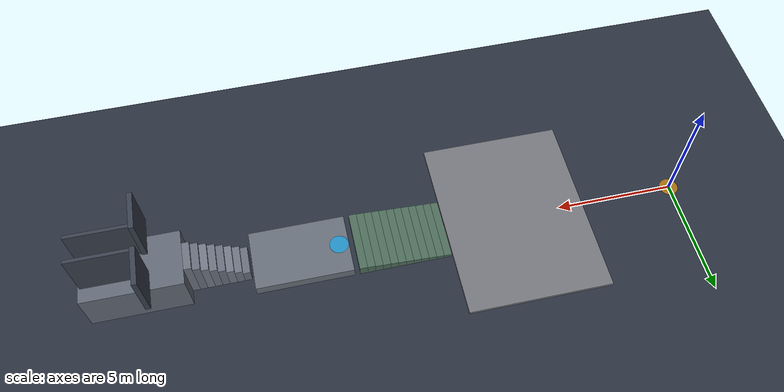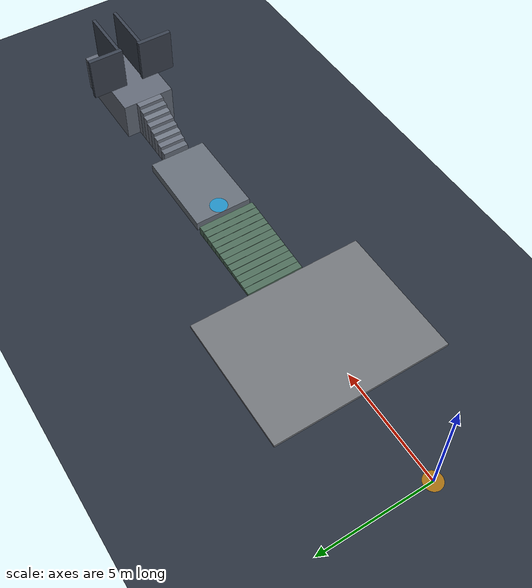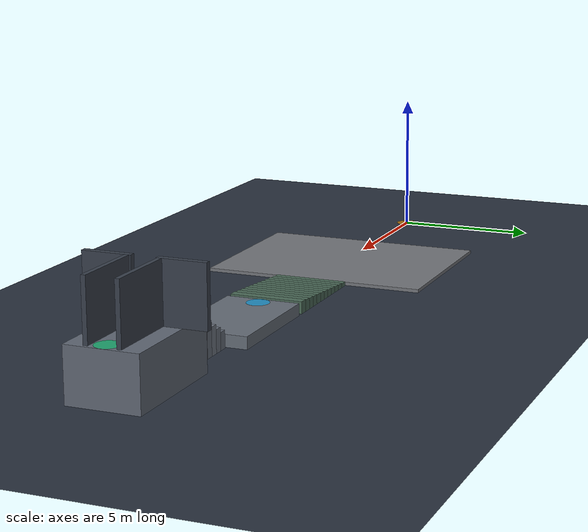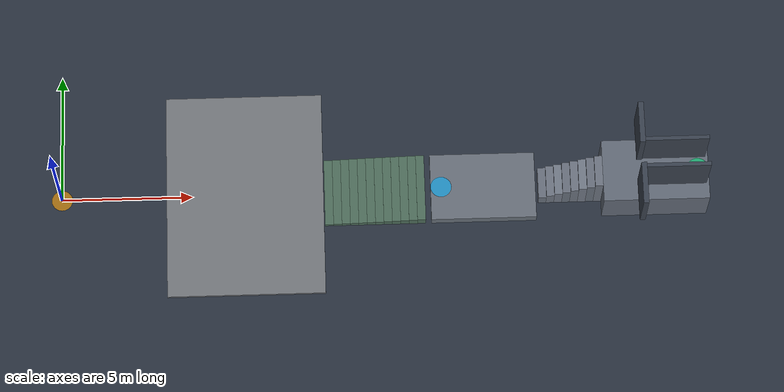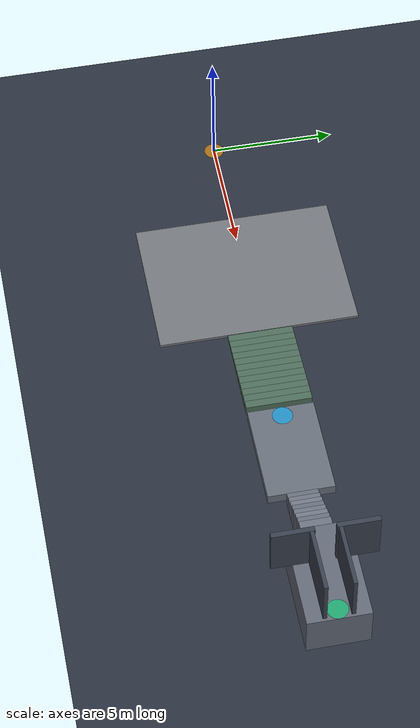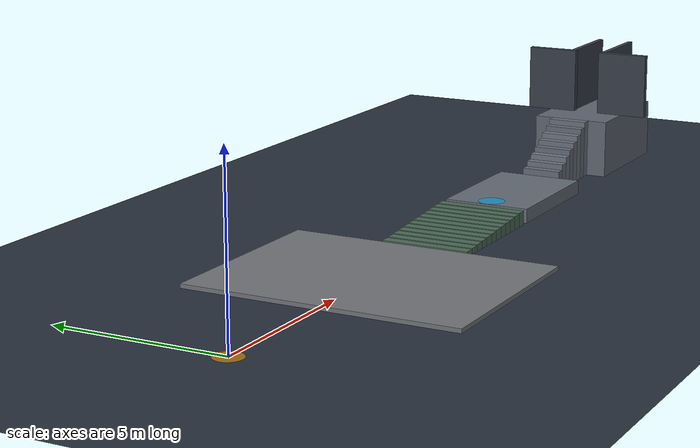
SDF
<?xml version="1.0"?>
<!--
  ARQUIVO GERADO - nao editar a mao.
  Fonte:   00_Especificacao_Mestre/parametros_mestres.yaml
  Gerador: ferramentas/gerar_mundo_gazebo.py
-->
<sdf version="1.9">
  <world name="percurso_parquetec">

    <physics name="dart" type="dart">
      <max_step_size>0.001</max_step_size>
      <real_time_factor>1.0</real_time_factor>
    </physics>

    <plugin filename="gz-sim-physics-system" name="gz::sim::systems::Physics"/>
    <plugin filename="gz-sim-user-commands-system" name="gz::sim::systems::UserCommands"/>
    <plugin filename="gz-sim-scene-broadcaster-system" name="gz::sim::systems::SceneBroadcaster"/>
    <plugin filename="gz-sim-sensors-system" name="gz::sim::systems::Sensors">
      <render_engine>ogre2</render_engine>
    </plugin>
    <plugin filename="gz-sim-imu-system" name="gz::sim::systems::Imu"/>
    <plugin filename="gz-sim-contact-system" name="gz::sim::systems::Contact"/>

    <gravity>0 0 -9.80665</gravity>
    <scene>
      <ambient>0.5 0.5 0.55 1</ambient>
      <background>0.06 0.08 0.12 1</background>
      <grid>false</grid>
      <shadows>true</shadows>
    </scene>

    <light type="directional" name="sol">
      <pose>0 0 12 0 0 0</pose>
      <diffuse>1.0 0.97 0.92 1</diffuse>
      <specular>0.25 0.25 0.25 1</specular>
      <direction>-0.4 0.3 -0.9</direction>
      <cast_shadows>true</cast_shadows>
    </light>

    <model name="piso">
      <static>true</static>
      <link name="link">
        <collision name="colisao">
          <geometry><plane><normal>0 0 1</normal><size>200 200</size></plane></geometry>
          <surface>
            <friction><ode><mu>0.85</mu><mu2>0.85</mu2></ode></friction>
          </surface>
        </collision>
        <visual name="visual">
          <geometry><plane><normal>0 0 1</normal><size>200 200</size></plane></geometry>
          <material>
            <ambient>0.16 0.19 0.24 1</ambient><diffuse>0.16 0.19 0.24 1</diffuse>
          </material>
        </visual>
      </link>
    </model>

    <model name="meio_fio">
      <static>true</static>
      <pose>7.0000 0.0000 0.0600 0 0 0</pose>
      <link name="link">
        <collision name="colisao">
          <geometry><box><size>6.0000 8.0000 0.1200</size></box></geometry>
          <surface>
            <friction><ode><mu>0.85</mu><mu2>0.85</mu2></ode></friction>
            <contact><ode><kp>1e7</kp><kd>1e3</kd></ode></contact>
          </surface>
        </collision>
        <visual name="visual">
          <geometry><box><size>6.0000 8.0000 0.1200</size></box></geometry>
          <material>
            <ambient>0.45 0.46 0.48 1</ambient>
            <diffuse>0.45 0.46 0.48 1</diffuse>
          </material>
        </visual>
      </link>
    </model>
    <model name="rampa_00">
      <static>true</static>
      <pose>10.2000 0.0000 0.0725 0 0 0</pose>
      <link name="link">
        <collision name="colisao">
          <geometry><box><size>0.3200 2.6000 0.1450</size></box></geometry>
          <surface>
            <friction><ode><mu>0.85</mu><mu2>0.85</mu2></ode></friction>
            <contact><ode><kp>1e7</kp><kd>1e3</kd></ode></contact>
          </surface>
        </collision>
        <visual name="visual">
          <geometry><box><size>0.3200 2.6000 0.1450</size></box></geometry>
          <material>
            <ambient>0.3 0.42 0.35 1</ambient>
            <diffuse>0.3 0.42 0.35 1</diffuse>
          </material>
        </visual>
      </link>
    </model>
    <model name="rampa_01">
      <static>true</static>
      <pose>10.5200 0.0000 0.0850 0 0 0</pose>
      <link name="link">
        <collision name="colisao">
          <geometry><box><size>0.3200 2.6000 0.1700</size></box></geometry>
          <surface>
            <friction><ode><mu>0.85</mu><mu2>0.85</mu2></ode></friction>
            <contact><ode><kp>1e7</kp><kd>1e3</kd></ode></contact>
          </surface>
        </collision>
        <visual name="visual">
          <geometry><box><size>0.3200 2.6000 0.1700</size></box></geometry>
          <material>
            <ambient>0.3 0.42 0.35 1</ambient>
            <diffuse>0.3 0.42 0.35 1</diffuse>
          </material>
        </visual>
      </link>
    </model>
    <model name="rampa_02">
      <static>true</static>
      <pose>10.8400 0.0000 0.0975 0 0 0</pose>
      <link name="link">
        <collision name="colisao">
          <geometry><box><size>0.3200 2.6000 0.1950</size></box></geometry>
          <surface>
            <friction><ode><mu>0.85</mu><mu2>0.85</mu2></ode></friction>
            <contact><ode><kp>1e7</kp><kd>1e3</kd></ode></contact>
          </surface>
        </collision>
        <visual name="visual">
          <geometry><box><size>0.3200 2.6000 0.1950</size></box></geometry>
          <material>
            <ambient>0.3 0.42 0.35 1</ambient>
            <diffuse>0.3 0.42 0.35 1</diffuse>
          </material>
        </visual>
      </link>
    </model>
    <model name="rampa_03">
      <static>true</static>
      <pose>11.1600 0.0000 0.1100 0 0 0</pose>
      <link name="link">
        <collision name="colisao">
          <geometry><box><size>0.3200 2.6000 0.2200</size></box></geometry>
          <surface>
            <friction><ode><mu>0.85</mu><mu2>0.85</mu2></ode></friction>
            <contact><ode><kp>1e7</kp><kd>1e3</kd></ode></contact>
          </surface>
        </collision>
        <visual name="visual">
          <geometry><box><size>0.3200 2.6000 0.2200</size></box></geometry>
          <material>
            <ambient>0.3 0.42 0.35 1</ambient>
            <diffuse>0.3 0.42 0.35 1</diffuse>
          </material>
        </visual>
      </link>
    </model>
    <model name="rampa_04">
      <static>true</static>
      <pose>11.4800 0.0000 0.1225 0 0 0</pose>
      <link name="link">
        <collision name="colisao">
          <geometry><box><size>0.3200 2.6000 0.2450</size></box></geometry>
          <surface>
            <friction><ode><mu>0.85</mu><mu2>0.85</mu2></ode></friction>
            <contact><ode><kp>1e7</kp><kd>1e3</kd></ode></contact>
          </surface>
        </collision>
        <visual name="visual">
          <geometry><box><size>0.3200 2.6000 0.2450</size></box></geometry>
          <material>
            <ambient>0.3 0.42 0.35 1</ambient>
            <diffuse>0.3 0.42 0.35 1</diffuse>
          </material>
        </visual>
      </link>
    </model>
    <model name="rampa_05">
      <static>true</static>
      <pose>11.8000 0.0000 0.1350 0 0 0</pose>
      <link name="link">
        <collision name="colisao">
          <geometry><box><size>0.3200 2.6000 0.2700</size></box></geometry>
          <surface>
            <friction><ode><mu>0.85</mu><mu2>0.85</mu2></ode></friction>
            <contact><ode><kp>1e7</kp><kd>1e3</kd></ode></contact>
          </surface>
        </collision>
        <visual name="visual">
          <geometry><box><size>0.3200 2.6000 0.2700</size></box></geometry>
          <material>
            <ambient>0.3 0.42 0.35 1</ambient>
            <diffuse>0.3 0.42 0.35 1</diffuse>
          </material>
        </visual>
      </link>
    </model>
    <model name="rampa_06">
      <static>true</static>
      <pose>12.1200 0.0000 0.1475 0 0 0</pose>
      <link name="link">
        <collision name="colisao">
          <geometry><box><size>0.3200 2.6000 0.2950</size></box></geometry>
          <surface>
            <friction><ode><mu>0.85</mu><mu2>0.85</mu2></ode></friction>
            <contact><ode><kp>1e7</kp><kd>1e3</kd></ode></contact>
          </surface>
        </collision>
        <visual name="visual">
          <geometry><box><size>0.3200 2.6000 0.2950</size></box></geometry>
          <material>
            <ambient>0.3 0.42 0.35 1</ambient>
            <diffuse>0.3 0.42 0.35 1</diffuse>
          </material>
        </visual>
      </link>
    </model>
    <model name="rampa_07">
      <static>true</static>
      <pose>12.4400 0.0000 0.1600 0 0 0</pose>
      <link name="link">
        <collision name="colisao">
          <geometry><box><size>0.3200 2.6000 0.3200</size></box></geometry>
          <surface>
            <friction><ode><mu>0.85</mu><mu2>0.85</mu2></ode></friction>
            <contact><ode><kp>1e7</kp><kd>1e3</kd></ode></contact>
          </surface>
        </collision>
        <visual name="visual">
          <geometry><box><size>0.3200 2.6000 0.3200</size></box></geometry>
          <material>
            <ambient>0.3 0.42 0.35 1</ambient>
            <diffuse>0.3 0.42 0.35 1</diffuse>
          </material>
        </visual>
      </link>
    </model>
    <model name="rampa_08">
      <static>true</static>
      <pose>12.7600 0.0000 0.1725 0 0 0</pose>
      <link name="link">
        <collision name="colisao">
          <geometry><box><size>0.3200 2.6000 0.3450</size></box></geometry>
          <surface>
            <friction><ode><mu>0.85</mu><mu2>0.85</mu2></ode></friction>
            <contact><ode><kp>1e7</kp><kd>1e3</kd></ode></contact>
          </surface>
        </collision>
        <visual name="visual">
          <geometry><box><size>0.3200 2.6000 0.3450</size></box></geometry>
          <material>
            <ambient>0.3 0.42 0.35 1</ambient>
            <diffuse>0.3 0.42 0.35 1</diffuse>
          </material>
        </visual>
      </link>
    </model>
    <model name="rampa_09">
      <static>true</static>
      <pose>13.0800 0.0000 0.1850 0 0 0</pose>
      <link name="link">
        <collision name="colisao">
          <geometry><box><size>0.3200 2.6000 0.3700</size></box></geometry>
          <surface>
            <friction><ode><mu>0.85</mu><mu2>0.85</mu2></ode></friction>
            <contact><ode><kp>1e7</kp><kd>1e3</kd></ode></contact>
          </surface>
        </collision>
        <visual name="visual">
          <geometry><box><size>0.3200 2.6000 0.3700</size></box></geometry>
          <material>
            <ambient>0.3 0.42 0.35 1</ambient>
            <diffuse>0.3 0.42 0.35 1</diffuse>
          </material>
        </visual>
      </link>
    </model>
    <model name="rampa_10">
      <static>true</static>
      <pose>13.4000 0.0000 0.1975 0 0 0</pose>
      <link name="link">
        <collision name="colisao">
          <geometry><box><size>0.3200 2.6000 0.3950</size></box></geometry>
          <surface>
            <friction><ode><mu>0.85</mu><mu2>0.85</mu2></ode></friction>
            <contact><ode><kp>1e7</kp><kd>1e3</kd></ode></contact>
          </surface>
        </collision>
        <visual name="visual">
          <geometry><box><size>0.3200 2.6000 0.3950</size></box></geometry>
          <material>
            <ambient>0.3 0.42 0.35 1</ambient>
            <diffuse>0.3 0.42 0.35 1</diffuse>
          </material>
        </visual>
      </link>
    </model>
    <model name="rampa_11">
      <static>true</static>
      <pose>13.7200 0.0000 0.2100 0 0 0</pose>
      <link name="link">
        <collision name="colisao">
          <geometry><box><size>0.3200 2.6000 0.4200</size></box></geometry>
          <surface>
            <friction><ode><mu>0.85</mu><mu2>0.85</mu2></ode></friction>
            <contact><ode><kp>1e7</kp><kd>1e3</kd></ode></contact>
          </surface>
        </collision>
        <visual name="visual">
          <geometry><box><size>0.3200 2.6000 0.4200</size></box></geometry>
          <material>
            <ambient>0.3 0.42 0.35 1</ambient>
            <diffuse>0.3 0.42 0.35 1</diffuse>
          </material>
        </visual>
      </link>
    </model>
    <model name="patamar_rampa">
      <static>true</static>
      <pose>16.1000 0.0000 0.2100 0 0 0</pose>
      <link name="link">
        <collision name="colisao">
          <geometry><box><size>4.0000 2.6000 0.4200</size></box></geometry>
          <surface>
            <friction><ode><mu>0.85</mu><mu2>0.85</mu2></ode></friction>
            <contact><ode><kp>1e7</kp><kd>1e3</kd></ode></contact>
          </surface>
        </collision>
        <visual name="visual">
          <geometry><box><size>4.0000 2.6000 0.4200</size></box></geometry>
          <material>
            <ambient>0.4 0.43 0.47 1</ambient>
            <diffuse>0.4 0.43 0.47 1</diffuse>
          </material>
        </visual>
      </link>
    </model>
    <model name="degrau_00">
      <static>true</static>
      <pose>18.3500 0.0000 0.2950 0 0 0</pose>
      <link name="link">
        <collision name="colisao">
          <geometry><box><size>0.3000 1.2000 0.5900</size></box></geometry>
          <surface>
            <friction><ode><mu>0.85</mu><mu2>0.85</mu2></ode></friction>
            <contact><ode><kp>1e7</kp><kd>1e3</kd></ode></contact>
          </surface>
        </collision>
        <visual name="visual">
          <geometry><box><size>0.3000 1.2000 0.5900</size></box></geometry>
          <material>
            <ambient>0.4 0.43000000000000005 0.48000000000000004 1</ambient>
            <diffuse>0.4 0.43000000000000005 0.48000000000000004 1</diffuse>
          </material>
        </visual>
      </link>
    </model>
    <model name="degrau_01">
      <static>true</static>
      <pose>18.6500 0.0000 0.3800 0 0 0</pose>
      <link name="link">
        <collision name="colisao">
          <geometry><box><size>0.3000 1.2000 0.7600</size></box></geometry>
          <surface>
            <friction><ode><mu>0.85</mu><mu2>0.85</mu2></ode></friction>
            <contact><ode><kp>1e7</kp><kd>1e3</kd></ode></contact>
          </surface>
        </collision>
        <visual name="visual">
          <geometry><box><size>0.3000 1.2000 0.7600</size></box></geometry>
          <material>
            <ambient>0.42000000000000004 0.45000000000000007 0.5 1</ambient>
            <diffuse>0.42000000000000004 0.45000000000000007 0.5 1</diffuse>
          </material>
        </visual>
      </link>
    </model>
    <model name="degrau_02">
      <static>true</static>
      <pose>18.9500 0.0000 0.4650 0 0 0</pose>
      <link name="link">
        <collision name="colisao">
          <geometry><box><size>0.3000 1.2000 0.9300</size></box></geometry>
          <surface>
            <friction><ode><mu>0.85</mu><mu2>0.85</mu2></ode></friction>
            <contact><ode><kp>1e7</kp><kd>1e3</kd></ode></contact>
          </surface>
        </collision>
        <visual name="visual">
          <geometry><box><size>0.3000 1.2000 0.9300</size></box></geometry>
          <material>
            <ambient>0.44 0.47 0.52 1</ambient>
            <diffuse>0.44 0.47 0.52 1</diffuse>
          </material>
        </visual>
      </link>
    </model>
    <model name="degrau_03">
      <static>true</static>
      <pose>19.2500 0.0000 0.5500 0 0 0</pose>
      <link name="link">
        <collision name="colisao">
          <geometry><box><size>0.3000 1.2000 1.1000</size></box></geometry>
          <surface>
            <friction><ode><mu>0.85</mu><mu2>0.85</mu2></ode></friction>
            <contact><ode><kp>1e7</kp><kd>1e3</kd></ode></contact>
          </surface>
        </collision>
        <visual name="visual">
          <geometry><box><size>0.3000 1.2000 1.1000</size></box></geometry>
          <material>
            <ambient>0.4 0.43000000000000005 0.48000000000000004 1</ambient>
            <diffuse>0.4 0.43000000000000005 0.48000000000000004 1</diffuse>
          </material>
        </visual>
      </link>
    </model>
    <model name="degrau_04">
      <static>true</static>
      <pose>19.5500 0.0000 0.6350 0 0 0</pose>
      <link name="link">
        <collision name="colisao">
          <geometry><box><size>0.3000 1.2000 1.2700</size></box></geometry>
          <surface>
            <friction><ode><mu>0.85</mu><mu2>0.85</mu2></ode></friction>
            <contact><ode><kp>1e7</kp><kd>1e3</kd></ode></contact>
          </surface>
        </collision>
        <visual name="visual">
          <geometry><box><size>0.3000 1.2000 1.2700</size></box></geometry>
          <material>
            <ambient>0.42000000000000004 0.45000000000000007 0.5 1</ambient>
            <diffuse>0.42000000000000004 0.45000000000000007 0.5 1</diffuse>
          </material>
        </visual>
      </link>
    </model>
    <model name="degrau_05">
      <static>true</static>
      <pose>19.8500 0.0000 0.7200 0 0 0</pose>
      <link name="link">
        <collision name="colisao">
          <geometry><box><size>0.3000 1.2000 1.4400</size></box></geometry>
          <surface>
            <friction><ode><mu>0.85</mu><mu2>0.85</mu2></ode></friction>
            <contact><ode><kp>1e7</kp><kd>1e3</kd></ode></contact>
          </surface>
        </collision>
        <visual name="visual">
          <geometry><box><size>0.3000 1.2000 1.4400</size></box></geometry>
          <material>
            <ambient>0.44 0.47 0.52 1</ambient>
            <diffuse>0.44 0.47 0.52 1</diffuse>
          </material>
        </visual>
      </link>
    </model>
    <model name="degrau_06">
      <static>true</static>
      <pose>20.1500 0.0000 0.8050 0 0 0</pose>
      <link name="link">
        <collision name="colisao">
          <geometry><box><size>0.3000 1.2000 1.6100</size></box></geometry>
          <surface>
            <friction><ode><mu>0.85</mu><mu2>0.85</mu2></ode></friction>
            <contact><ode><kp>1e7</kp><kd>1e3</kd></ode></contact>
          </surface>
        </collision>
        <visual name="visual">
          <geometry><box><size>0.3000 1.2000 1.6100</size></box></geometry>
          <material>
            <ambient>0.4 0.43000000000000005 0.48000000000000004 1</ambient>
            <diffuse>0.4 0.43000000000000005 0.48000000000000004 1</diffuse>
          </material>
        </visual>
      </link>
    </model>
    <model name="degrau_07">
      <static>true</static>
      <pose>20.4500 0.0000 0.8900 0 0 0</pose>
      <link name="link">
        <collision name="colisao">
          <geometry><box><size>0.3000 1.2000 1.7800</size></box></geometry>
          <surface>
            <friction><ode><mu>0.85</mu><mu2>0.85</mu2></ode></friction>
            <contact><ode><kp>1e7</kp><kd>1e3</kd></ode></contact>
          </surface>
        </collision>
        <visual name="visual">
          <geometry><box><size>0.3000 1.2000 1.7800</size></box></geometry>
          <material>
            <ambient>0.42000000000000004 0.45000000000000007 0.5 1</ambient>
            <diffuse>0.42000000000000004 0.45000000000000007 0.5 1</diffuse>
          </material>
        </visual>
      </link>
    </model>
    <model name="degrau_patamar">
      <static>true</static>
      <pose>22.6000 0.0000 0.8900 0 0 0</pose>
      <link name="link">
        <collision name="colisao">
          <geometry><box><size>4.0000 2.4000 1.7800</size></box></geometry>
          <surface>
            <friction><ode><mu>0.85</mu><mu2>0.85</mu2></ode></friction>
            <contact><ode><kp>1e7</kp><kd>1e3</kd></ode></contact>
          </surface>
        </collision>
        <visual name="visual">
          <geometry><box><size>4.0000 2.4000 1.7800</size></box></geometry>
          <material>
            <ambient>0.38 0.41 0.46 1</ambient>
            <diffuse>0.38 0.41 0.46 1</diffuse>
          </material>
        </visual>
      </link>
    </model>
    <model name="parede_porta_esq">
      <static>true</static>
      <pose>22.0000 1.2000 2.7800 0 0 0</pose>
      <link name="link">
        <collision name="colisao">
          <geometry><box><size>0.2000 1.6000 2.0000</size></box></geometry>
          <surface>
            <friction><ode><mu>0.6</mu><mu2>0.6</mu2></ode></friction>
            <contact><ode><kp>1e7</kp><kd>1e3</kd></ode></contact>
          </surface>
        </collision>
        <visual name="visual">
          <geometry><box><size>0.2000 1.6000 2.0000</size></box></geometry>
          <material>
            <ambient>0.22 0.25 0.3 1</ambient>
            <diffuse>0.22 0.25 0.3 1</diffuse>
          </material>
        </visual>
      </link>
    </model>
    <model name="parede_corredor_esq">
      <static>true</static>
      <pose>23.3000 0.5250 2.7800 0 0 0</pose>
      <link name="link">
        <collision name="colisao">
          <geometry><box><size>2.4000 0.1500 2.0000</size></box></geometry>
          <surface>
            <friction><ode><mu>0.6</mu><mu2>0.6</mu2></ode></friction>
            <contact><ode><kp>1e7</kp><kd>1e3</kd></ode></contact>
          </surface>
        </collision>
        <visual name="visual">
          <geometry><box><size>2.4000 0.1500 2.0000</size></box></geometry>
          <material>
            <ambient>0.22 0.25 0.3 1</ambient>
            <diffuse>0.22 0.25 0.3 1</diffuse>
          </material>
        </visual>
      </link>
    </model>
    <model name="parede_porta_dir">
      <static>true</static>
      <pose>22.0000 -1.2000 2.7800 0 0 0</pose>
      <link name="link">
        <collision name="colisao">
          <geometry><box><size>0.2000 1.6000 2.0000</size></box></geometry>
          <surface>
            <friction><ode><mu>0.6</mu><mu2>0.6</mu2></ode></friction>
            <contact><ode><kp>1e7</kp><kd>1e3</kd></ode></contact>
          </surface>
        </collision>
        <visual name="visual">
          <geometry><box><size>0.2000 1.6000 2.0000</size></box></geometry>
          <material>
            <ambient>0.22 0.25 0.3 1</ambient>
            <diffuse>0.22 0.25 0.3 1</diffuse>
          </material>
        </visual>
      </link>
    </model>
    <model name="parede_corredor_dir">
      <static>true</static>
      <pose>23.3000 -0.5250 2.7800 0 0 0</pose>
      <link name="link">
        <collision name="colisao">
          <geometry><box><size>2.4000 0.1500 2.0000</size></box></geometry>
          <surface>
            <friction><ode><mu>0.6</mu><mu2>0.6</mu2></ode></friction>
            <contact><ode><kp>1e7</kp><kd>1e3</kd></ode></contact>
          </surface>
        </collision>
        <visual name="visual">
          <geometry><box><size>2.4000 0.1500 2.0000</size></box></geometry>
          <material>
            <ambient>0.22 0.25 0.3 1</ambient>
            <diffuse>0.22 0.25 0.3 1</diffuse>
          </material>
        </visual>
      </link>
    </model>
    <model name="ponto_base">
      <static>true</static>
      <pose>0.000 0.000 0.005 0 0 0</pose>
      <link name="link">
        <visual name="visual">
          <geometry><cylinder><radius>0.40</radius><length>0.004</length></cylinder></geometry>
          <material>
            <ambient>1.0 0.63 0.0 0.6</ambient><diffuse>1.0 0.63 0.0 0.6</diffuse>
            <emissive>1.0 0.63 0.0 0.4</emissive>
          </material>
        </visual>
      </link>
    </model>
    <model name="ponto_coleta">
      <static>true</static>
      <pose>14.500 0.000 0.425 0 0 0</pose>
      <link name="link">
        <visual name="visual">
          <geometry><cylinder><radius>0.40</radius><length>0.004</length></cylinder></geometry>
          <material>
            <ambient>0.0 0.69 1.0 0.6</ambient><diffuse>0.0 0.69 1.0 0.6</diffuse>
            <emissive>0.0 0.69 1.0 0.4</emissive>
          </material>
        </visual>
      </link>
    </model>
    <model name="ponto_entrega">
      <static>true</static>
      <pose>24.200 0.000 1.785 0 0 0</pose>
      <link name="link">
        <visual name="visual">
          <geometry><cylinder><radius>0.40</radius><length>0.004</length></cylinder></geometry>
          <material>
            <ambient>0.0 0.85 0.47 0.6</ambient><diffuse>0.0 0.85 0.47 0.6</diffuse>
            <emissive>0.0 0.85 0.47 0.4</emissive>
          </material>
        </visual>
      </link>
    </model>
  </world>
</sdf>
